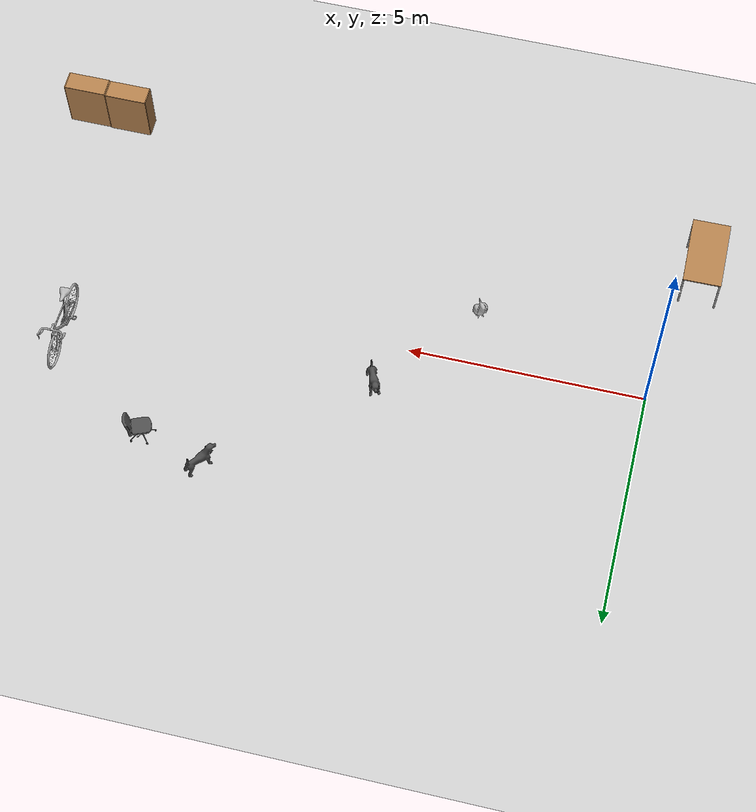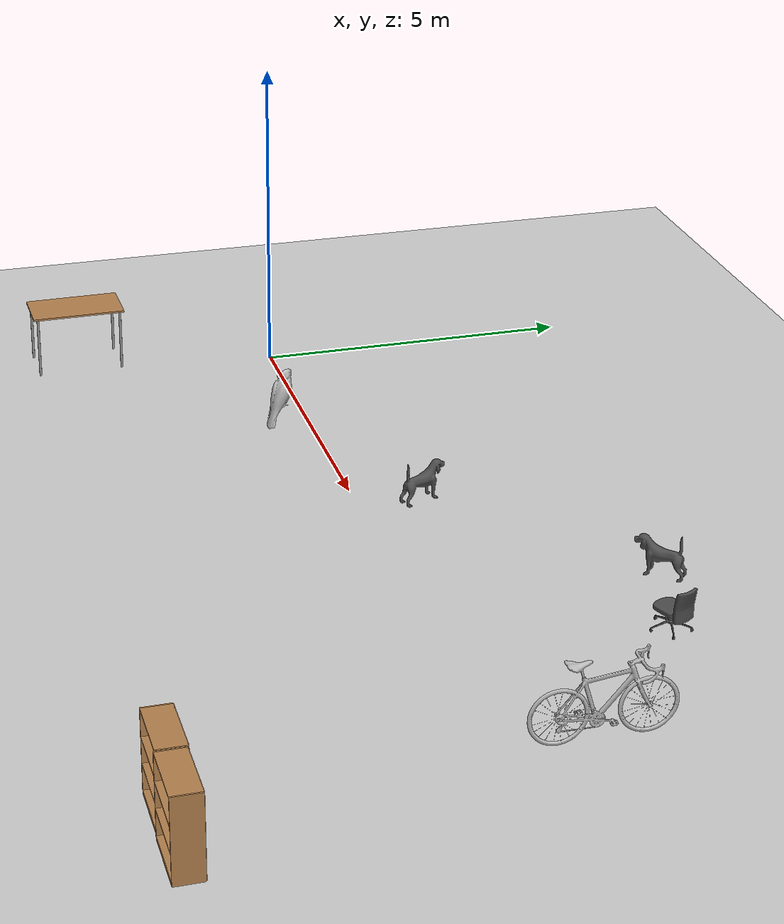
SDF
<sdf version="1.6">
 <world name="default">
  <model name="ground_plane">
   <static>1</static>
   <link name="link">
    <collision name="collision">
     <geometry><plane><normal>0 0 1</normal><size>100 100</size></plane></geometry>
     <surface><friction><ode><mu>100</mu><mu2>50</mu2></ode></friction></surface>
    </collision>
    <visual name="visual">
     <cast_shadows>0</cast_shadows>
     <geometry><plane><normal>0 0 1</normal><size>100 100</size></plane></geometry>
     <material>
      <script><uri>file://media/materials/scripts/gazebo.material</uri><name>Gazebo/Grey</name></script>
     </material>
    </visual>
   </link>
  </model>
  <model name="table">
   <static>1</static>
   <link name="link">
    <collision name="surface">
     <pose>0 0 1 0 -0 0</pose>
     <geometry><box><size>1.5 0.8 0.03</size></box></geometry>
     <surface><friction><ode><mu>0.6</mu><mu2>0.6</mu2></ode></friction></surface>
    </collision>
    <visual name="visual1">
     <pose>0 0 1 0 -0 0</pose>
     <geometry><box><size>1.5 0.8 0.03</size></box></geometry>
     <material>
      <script><uri>file://media/materials/scripts/gazebo.material</uri><name>Gazebo/Wood</name></script>
     </material>
    </visual>
    <collision name="front_left_leg">
     <pose>0.68 0.38 0.5 0 -0 0</pose>
     <geometry><cylinder><radius>0.02</radius><length>1</length></cylinder></geometry>
    </collision>
    <visual name="front_left_leg">
     <pose>0.68 0.38 0.5 0 -0 0</pose>
     <geometry><cylinder><radius>0.02</radius><length>1</length></cylinder></geometry>
     <material>
      <script><uri>file://media/materials/scripts/gazebo.material</uri><name>Gazebo/Grey</name></script>
     </material>
    </visual>
    <collision name="front_right_leg">
     <pose>0.68 -0.38 0.5 0 -0 0</pose>
     <geometry><cylinder><radius>0.02</radius><length>1</length></cylinder></geometry>
    </collision>
    <visual name="front_right_leg">
     <pose>0.68 -0.38 0.5 0 -0 0</pose>
     <geometry><cylinder><radius>0.02</radius><length>1</length></cylinder></geometry>
     <material>
      <script><uri>file://media/materials/scripts/gazebo.material</uri><name>Gazebo/Grey</name></script>
     </material>
    </visual>
    <collision name="back_right_leg">
     <pose>-0.68 -0.38 0.5 0 -0 0</pose>
     <geometry><cylinder><radius>0.02</radius><length>1</length></cylinder></geometry>
    </collision>
    <visual name="back_right_leg">
     <pose>-0.68 -0.38 0.5 0 -0 0</pose>
     <geometry><cylinder><radius>0.02</radius><length>1</length></cylinder></geometry>
     <material>
      <script><uri>file://media/materials/scripts/gazebo.material</uri><name>Gazebo/Grey</name></script>
     </material>
    </visual>
    <collision name="back_left_leg">
     <pose>-0.68 0.38 0.5 0 -0 0</pose>
     <geometry><cylinder><radius>0.02</radius><length>1</length></cylinder></geometry>
    </collision>
    <visual name="back_left_leg">
     <pose>-0.68 0.38 0.5 0 -0 0</pose>
     <geometry><cylinder><radius>0.02</radius><length>1</length></cylinder></geometry>
     <material>
      <script><uri>file://media/materials/scripts/gazebo.material</uri><name>Gazebo/Grey</name></script>
     </material>
    </visual>
   </link>
   <pose>-0.65793 -3.16781 0 0 -0 1.58181</pose>
  </model>
  <model name="bookshelf">
   <static>1</static>
   <link name="link">
    <inertial><mass>1</mass></inertial>
    <collision name="back">
     <pose>0 0.005 0.6 0 -0 0</pose>
     <geometry><box><size>0.9 0.01 1.2</size></box></geometry>
    </collision>
    <visual name="visual1">
     <pose>0 0.005 0.6 0 -0 0</pose>
     <geometry><box><size>0.9 0.01 1.2</size></box></geometry>
     <material>
      <script><uri>file://media/materials/scripts/gazebo.material</uri><name>Gazebo/Wood</name></script>
     </material>
    </visual>
    <collision name="left_side">
     <pose>0.45 -0.195 0.6 0 -0 0</pose>
     <geometry><box><size>0.02 0.4 1.2</size></box></geometry>
    </collision>
    <visual name="visual2">
     <pose>0.45 -0.195 0.6 0 -0 0</pose>
     <geometry><box><size>0.02 0.4 1.2</size></box></geometry>
     <material>
      <script><uri>file://media/materials/scripts/gazebo.material</uri><name>Gazebo/Wood</name></script>
     </material>
    </visual>
    <collision name="right_side">
     <pose>-0.45 -0.195 0.6 0 -0 0</pose>
     <geometry><box><size>0.02 0.4 1.2</size></box></geometry>
    </collision>
    <visual name="visual3">
     <pose>-0.45 -0.195 0.6 0 -0 0</pose>
     <geometry><box><size>0.02 0.4 1.2</size></box></geometry>
     <material>
      <script><uri>file://media/materials/scripts/gazebo.material</uri><name>Gazebo/Wood</name></script>
     </material>
    </visual>
    <collision name="bottom">
     <pose>0 -0.195 0.03 0 -0 0</pose>
     <geometry><box><size>0.88 0.4 0.06</size></box></geometry>
    </collision>
    <visual name="visual4">
     <pose>0 -0.195 0.03 0 -0 0</pose>
     <geometry><box><size>0.88 0.4 0.06</size></box></geometry>
     <material>
      <script><uri>file://media/materials/scripts/gazebo.material</uri><name>Gazebo/Wood</name></script>
     </material>
    </visual>
    <collision name="top">
     <pose>0 -0.195 1.19 0 -0 0</pose>
     <geometry><box><size>0.88 0.4 0.02</size></box></geometry>
    </collision>
    <visual name="visual5">
     <pose>0 -0.195 1.19 0 -0 0</pose>
     <geometry><box><size>0.88 0.4 0.02</size></box></geometry>
     <material>
      <script><uri>file://media/materials/scripts/gazebo.material</uri><name>Gazebo/Wood</name></script>
     </material>
    </visual>
    <collision name="low_shelf">
     <pose>0 -0.195 0.43 0 -0 0</pose>
     <geometry><box><size>0.88 0.4 0.02</size></box></geometry>
    </collision>
    <visual name="visual6">
     <pose>0 -0.195 0.43 0 -0 0</pose>
     <geometry><box><size>0.88 0.4 0.02</size></box></geometry>
     <material>
      <script><uri>file://media/materials/scripts/gazebo.material</uri><name>Gazebo/Wood</name></script>
     </material>
    </visual>
    <collision name="high_shelf">
     <pose>0 -0.195 0.8 0 -0 0</pose>
     <geometry><box><size>0.88 0.4 0.02</size></box></geometry>
    </collision>
    <visual name="visual7">
     <pose>0 -0.195 0.8 0 -0 0</pose>
     <geometry><box><size>0.88 0.4 0.02</size></box></geometry>
     <material>
      <script><uri>file://media/materials/scripts/gazebo.material</uri><name>Gazebo/Wood</name></script>
     </material>
    </visual>
   </link>
   <pose>12.2626 -4.00117 0 0 -0 0</pose>
  </model>
  <model name="bookshelf_clone">
   <static>1</static>
   <link name="link">
    <inertial><mass>1</mass></inertial>
    <collision name="back">
     <pose>0 0.005 0.6 0 -0 0</pose>
     <geometry><box><size>0.9 0.01 1.2</size></box></geometry>
    </collision>
    <visual name="visual1">
     <pose>0 0.005 0.6 0 -0 0</pose>
     <geometry><box><size>0.9 0.01 1.2</size></box></geometry>
     <material>
      <script><uri>file://media/materials/scripts/gazebo.material</uri><name>Gazebo/Wood</name></script>
     </material>
    </visual>
    <collision name="left_side">
     <pose>0.45 -0.195 0.6 0 -0 0</pose>
     <geometry><box><size>0.02 0.4 1.2</size></box></geometry>
    </collision>
    <visual name="visual2">
     <pose>0.45 -0.195 0.6 0 -0 0</pose>
     <geometry><box><size>0.02 0.4 1.2</size></box></geometry>
     <material>
      <script><uri>file://media/materials/scripts/gazebo.material</uri><name>Gazebo/Wood</name></script>
     </material>
    </visual>
    <collision name="right_side">
     <pose>-0.45 -0.195 0.6 0 -0 0</pose>
     <geometry><box><size>0.02 0.4 1.2</size></box></geometry>
    </collision>
    <visual name="visual3">
     <pose>-0.45 -0.195 0.6 0 -0 0</pose>
     <geometry><box><size>0.02 0.4 1.2</size></box></geometry>
     <material>
      <script><uri>file://media/materials/scripts/gazebo.material</uri><name>Gazebo/Wood</name></script>
     </material>
    </visual>
    <collision name="bottom">
     <pose>0 -0.195 0.03 0 -0 0</pose>
     <geometry><box><size>0.88 0.4 0.06</size></box></geometry>
    </collision>
    <visual name="visual4">
     <pose>0 -0.195 0.03 0 -0 0</pose>
     <geometry><box><size>0.88 0.4 0.06</size></box></geometry>
     <material>
      <script><uri>file://media/materials/scripts/gazebo.material</uri><name>Gazebo/Wood</name></script>
     </material>
    </visual>
    <collision name="top">
     <pose>0 -0.195 1.19 0 -0 0</pose>
     <geometry><box><size>0.88 0.4 0.02</size></box></geometry>
    </collision>
    <visual name="visual5">
     <pose>0 -0.195 1.19 0 -0 0</pose>
     <geometry><box><size>0.88 0.4 0.02</size></box></geometry>
     <material>
      <script><uri>file://media/materials/scripts/gazebo.material</uri><name>Gazebo/Wood</name></script>
     </material>
    </visual>
    <collision name="low_shelf">
     <pose>0 -0.195 0.43 0 -0 0</pose>
     <geometry><box><size>0.88 0.4 0.02</size></box></geometry>
    </collision>
    <visual name="visual6">
     <pose>0 -0.195 0.43 0 -0 0</pose>
     <geometry><box><size>0.88 0.4 0.02</size></box></geometry>
     <material>
      <script><uri>file://media/materials/scripts/gazebo.material</uri><name>Gazebo/Wood</name></script>
     </material>
    </visual>
    <collision name="high_shelf">
     <pose>0 -0.195 0.8 0 -0 0</pose>
     <geometry><box><size>0.88 0.4 0.02</size></box></geometry>
    </collision>
    <visual name="visual7">
     <pose>0 -0.195 0.8 0 -0 0</pose>
     <geometry><box><size>0.88 0.4 0.02</size></box></geometry>
     <material>
      <script><uri>file://media/materials/scripts/gazebo.material</uri><name>Gazebo/Wood</name></script>
     </material>
    </visual>
   </link>
   <pose>13.1865 -4.01814 0 0 -0 0</pose>
  </model>
  <model name="extra_dog_beagle_clone">
   <static>1</static>
   <link name="link">
    <visual name="visual">
     <geometry>
      <mesh><scale>0.1 0.1 0.1</scale><uri>model://extra_dog_beagle/meshes/Beagle.stl</uri></mesh>
     </geometry>
     <material>
      <script><uri>file://media/materials/scipts/gazebo.material</uri><name>Gazebo/DarkGrey</name></script>
     </material>
    </visual>
   </link>
   <pose>5.53701 0.953343 0 0 0 -2.7623</pose>
  </model>
  <model name="extra_bicycle_clone">
   <static>1</static>
   <link name="link">
    <visual name="visual">
     <geometry>
      <mesh><scale>0.01 0.01 0.01</scale><uri>model://extra_bicycle/meshes/10489_bicycle_L2.dae</uri></mesh>
     </geometry>
     <material>
      <script>
       <uri>model://extra_bicycle/materials/scripts</uri>
       <uri>model://extra_bicycle/materials/textures</uri>
       <name>extra_bicycle/image_1</name>
      </script>
     </material>
    </visual>
   </link>
   <pose>12.1047 1.3027 0 0 -0 0</pose>
  </model>
  <model name="extra_office_chair_v2_clone">
   <static>1</static>
   <link name="link">
    <visual name="visual">
     <geometry>
      <mesh>
       <scale>0.0025 0.0025 0.0025</scale>
       <uri>model://extra_office_chair_v2/meshes/OfficeChair.dae</uri>
      </mesh>
     </geometry>
     <material>
      <script><uri>file://media/materials/scripts/gazebo.material</uri><name>Gazebo/DarkGrey</name></script>
     </material>
    </visual>
   </link>
   <pose>9.89891 3.10012 0 1.57142 -0.00025 0.380567</pose>
  </model>
  <model name="extra_bird1">
   <static>1</static>
   <link name="link">
    <visual name="visual">
     <geometry>
      <mesh><scale>0.02 0.02 0.02</scale><uri>model://extra_bird1/meshes/12259_Bird_v1_L2.dae</uri></mesh>
     </geometry>
     <material>
      <script>
       <uri>model://extra_bird1/materials/scripts</uri>
       <uri>model://extra_bird1/materials/textures</uri>
       <name>extra_bird1/image_1</name>
      </script>
     </material>
    </visual>
   </link>
   <pose>3.71761 -0.77526 0.85955 0 0 -2.59438</pose>
  </model>
  <model name="extra_dog_beagle_clone_clone">
   <static>1</static>
   <link name="link">
    <visual name="visual">
     <geometry>
      <mesh><scale>0.1 0.1 0.1</scale><uri>model://extra_dog_beagle/meshes/Beagle.stl</uri></mesh>
     </geometry>
     <material>
      <script><uri>file://media/materials/scipts/gazebo.material</uri><name>Gazebo/DarkGrey</name></script>
     </material>
    </visual>
   </link>
   <pose>8.53689 3.54126 0 0 0 -0.703099</pose>
  </model>
 </world>
</sdf>
